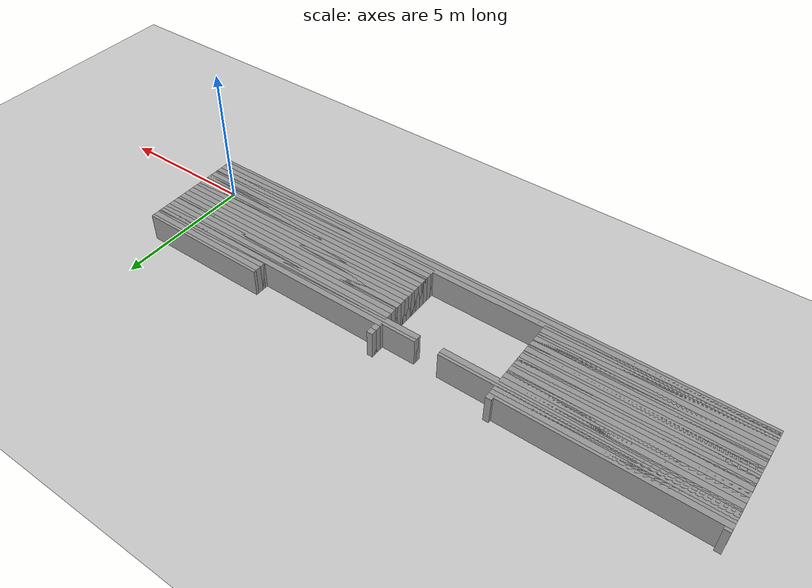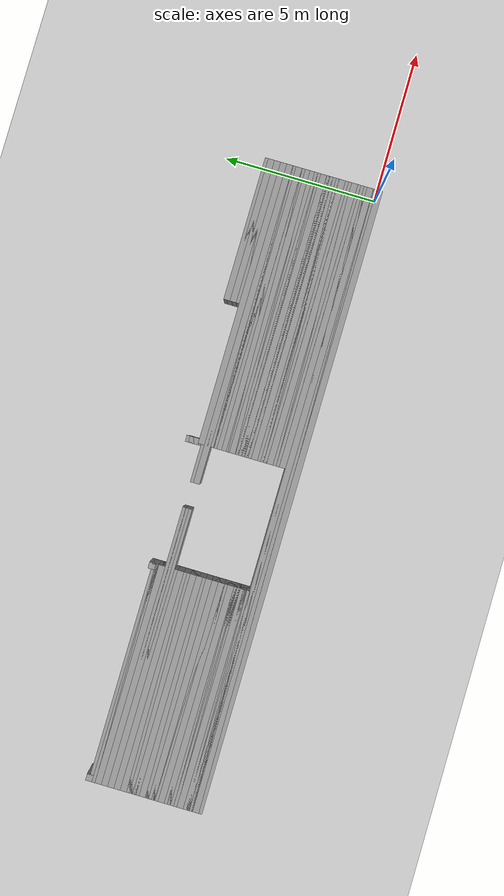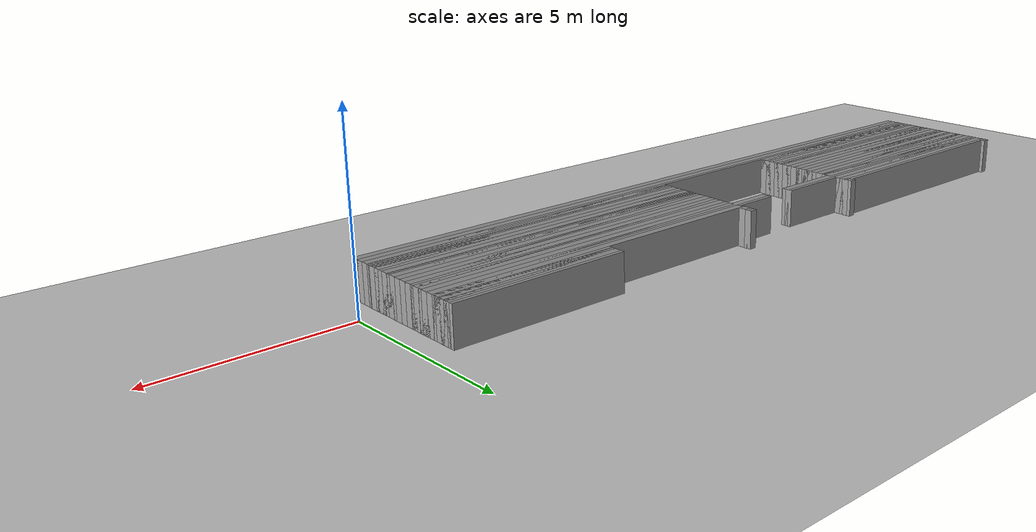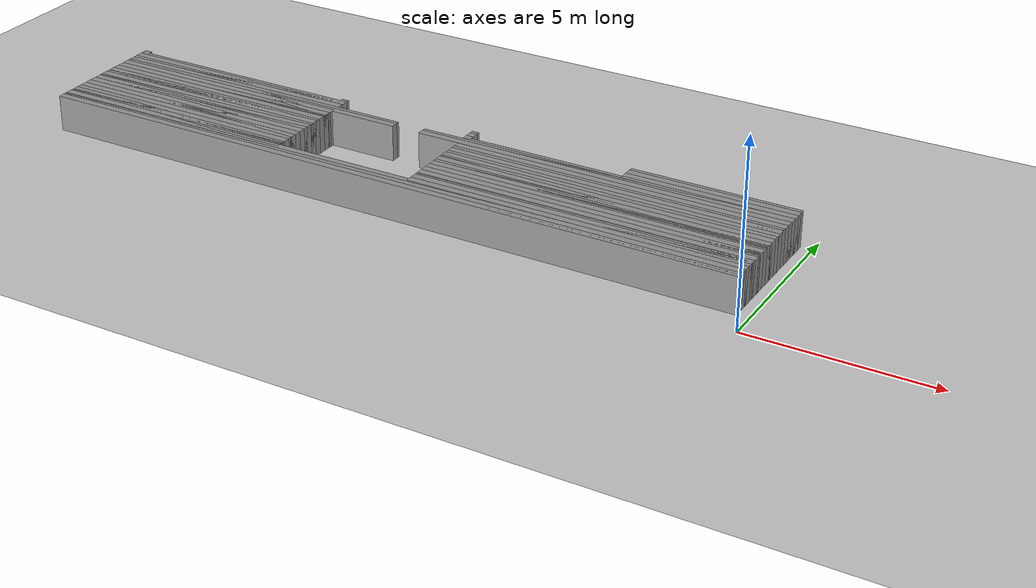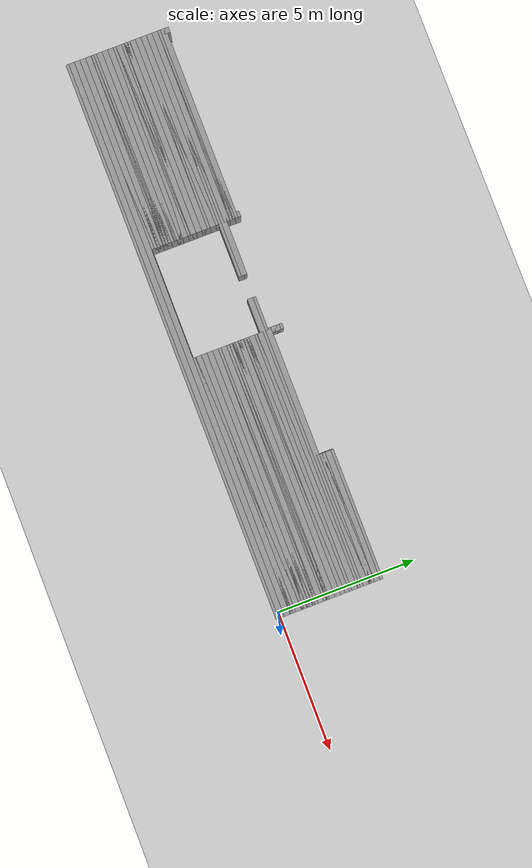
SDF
<sdf version="1.6">
 <world name="GridMap">
  <include><uri>model://sun</uri></include>
  <include><uri>model://ground_plane</uri></include>
  <model name="GridMap">
   <link name="Wall_(99.5,0.0)">
    <collision name="Wall_(99.5,0.0)_Collision">
     <geometry><box><size>19.900000000000002 0.2 1.0</size></box></geometry>
     <pose>-9.950000000000001 0.0 0.5 0 -0 0</pose>
    </collision>
    <visual name="Wall_(99.5,0.0)_Visual">
     <geometry><box><size>19.900000000000002 0.2 1.0</size></box></geometry>
     <pose>-9.950000000000001 0.0 0.5 0 -0 0</pose>
     <material>
      <script><uri>file://media/materials/scripts/gazebo.material</uri><name>Gazebo/Grey</name></script>
      <ambient>1 1 1 1</ambient>
     </material>
     <meta><layer>0</layer></meta>
    </visual>
    <pose>0 0 0.5 0 -0 0</pose>
   </link>
   <link name="Wall_(99.5,1.0)">
    <collision name="Wall_(99.5,1.0)_Collision">
     <geometry><box><size>19.900000000000002 0.2 1.0</size></box></geometry>
     <pose>-9.950000000000001 0.1 0.5 0 -0 0</pose>
    </collision>
    <visual name="Wall_(99.5,1.0)_Visual">
     <geometry><box><size>19.900000000000002 0.2 1.0</size></box></geometry>
     <pose>-9.950000000000001 0.1 0.5 0 -0 0</pose>
     <material>
      <script><uri>file://media/materials/scripts/gazebo.material</uri><name>Gazebo/Grey</name></script>
      <ambient>1 1 1 1</ambient>
     </material>
     <meta><layer>0</layer></meta>
    </visual>
    <pose>0 0 0.5 0 -0 0</pose>
   </link>
   <link name="Wall_(99.5,2.0)">
    <collision name="Wall_(99.5,2.0)_Collision">
     <geometry><box><size>19.900000000000002 0.2 1.0</size></box></geometry>
     <pose>-9.950000000000001 0.2 0.5 0 -0 0</pose>
    </collision>
    <visual name="Wall_(99.5,2.0)_Visual">
     <geometry><box><size>19.900000000000002 0.2 1.0</size></box></geometry>
     <pose>-9.950000000000001 0.2 0.5 0 -0 0</pose>
     <material>
      <script><uri>file://media/materials/scripts/gazebo.material</uri><name>Gazebo/Grey</name></script>
      <ambient>1 1 1 1</ambient>
     </material>
     <meta><layer>0</layer></meta>
    </visual>
    <pose>0 0 0.5 0 -0 0</pose>
   </link>
   <link name="Wall_(99.5,3.0)">
    <collision name="Wall_(99.5,3.0)_Collision">
     <geometry><box><size>19.900000000000002 0.2 1.0</size></box></geometry>
     <pose>-9.950000000000001 0.30000000000000004 0.5 0 -0 0</pose>
    </collision>
    <visual name="Wall_(99.5,3.0)_Visual">
     <geometry><box><size>19.900000000000002 0.2 1.0</size></box></geometry>
     <pose>-9.950000000000001 0.30000000000000004 0.5 0 -0 0</pose>
     <material>
      <script><uri>file://media/materials/scripts/gazebo.material</uri><name>Gazebo/Grey</name></script>
      <ambient>1 1 1 1</ambient>
     </material>
     <meta><layer>0</layer></meta>
    </visual>
    <pose>0 0 0.5 0 -0 0</pose>
   </link>
   <link name="Wall_(45.5,4.0)">
    <collision name="Wall_(45.5,4.0)_Collision">
     <geometry><box><size>9.1 0.2 1.0</size></box></geometry>
     <pose>-4.55 0.4 0.5 0 -0 0</pose>
    </collision>
    <visual name="Wall_(45.5,4.0)_Visual">
     <geometry><box><size>9.1 0.2 1.0</size></box></geometry>
     <pose>-4.55 0.4 0.5 0 -0 0</pose>
     <material>
      <script><uri>file://media/materials/scripts/gazebo.material</uri><name>Gazebo/Grey</name></script>
      <ambient>1 1 1 1</ambient>
     </material>
     <meta><layer>0</layer></meta>
    </visual>
    <pose>0 0 0.5 0 -0 0</pose>
   </link>
   <link name="Wall_(164.5,4.0)">
    <collision name="Wall_(164.5,4.0)_Collision">
     <geometry><box><size>6.9 0.2 1.0</size></box></geometry>
     <pose>-16.45 0.4 0.5 0 -0 0</pose>
    </collision>
    <visual name="Wall_(164.5,4.0)_Visual">
     <geometry><box><size>6.9 0.2 1.0</size></box></geometry>
     <pose>-16.45 0.4 0.5 0 -0 0</pose>
     <material>
      <script><uri>file://media/materials/scripts/gazebo.material</uri><name>Gazebo/Grey</name></script>
      <ambient>1 1 1 1</ambient>
     </material>
     <meta><layer>0</layer></meta>
    </visual>
    <pose>0 0 0.5 0 -0 0</pose>
   </link>
   <link name="Wall_(45.5,5.0)">
    <collision name="Wall_(45.5,5.0)_Collision">
     <geometry><box><size>9.1 0.2 1.0</size></box></geometry>
     <pose>-4.55 0.5 0.5 0 -0 0</pose>
    </collision>
    <visual name="Wall_(45.5,5.0)_Visual">
     <geometry><box><size>9.1 0.2 1.0</size></box></geometry>
     <pose>-4.55 0.5 0.5 0 -0 0</pose>
     <material>
      <script><uri>file://media/materials/scripts/gazebo.material</uri><name>Gazebo/Grey</name></script>
      <ambient>1 1 1 1</ambient>
     </material>
     <meta><layer>0</layer></meta>
    </visual>
    <pose>0 0 0.5 0 -0 0</pose>
   </link>
   <link name="Wall_(164.5,5.0)">
    <collision name="Wall_(164.5,5.0)_Collision">
     <geometry><box><size>6.9 0.2 1.0</size></box></geometry>
     <pose>-16.45 0.5 0.5 0 -0 0</pose>
    </collision>
    <visual name="Wall_(164.5,5.0)_Visual">
     <geometry><box><size>6.9 0.2 1.0</size></box></geometry>
     <pose>-16.45 0.5 0.5 0 -0 0</pose>
     <material>
      <script><uri>file://media/materials/scripts/gazebo.material</uri><name>Gazebo/Grey</name></script>
      <ambient>1 1 1 1</ambient>
     </material>
     <meta><layer>0</layer></meta>
    </visual>
    <pose>0 0 0.5 0 -0 0</pose>
   </link>
   <link name="Wall_(45.5,6.0)">
    <collision name="Wall_(45.5,6.0)_Collision">
     <geometry><box><size>9.1 0.2 1.0</size></box></geometry>
     <pose>-4.55 0.6000000000000001 0.5 0 -0 0</pose>
    </collision>
    <visual name="Wall_(45.5,6.0)_Visual">
     <geometry><box><size>9.1 0.2 1.0</size></box></geometry>
     <pose>-4.55 0.6000000000000001 0.5 0 -0 0</pose>
     <material>
      <script><uri>file://media/materials/scripts/gazebo.material</uri><name>Gazebo/Grey</name></script>
      <ambient>1 1 1 1</ambient>
     </material>
     <meta><layer>0</layer></meta>
    </visual>
    <pose>0 0 0.5 0 -0 0</pose>
   </link>
   <link name="Wall_(164.5,6.0)">
    <collision name="Wall_(164.5,6.0)_Collision">
     <geometry><box><size>6.9 0.2 1.0</size></box></geometry>
     <pose>-16.45 0.6000000000000001 0.5 0 -0 0</pose>
    </collision>
    <visual name="Wall_(164.5,6.0)_Visual">
     <geometry><box><size>6.9 0.2 1.0</size></box></geometry>
     <pose>-16.45 0.6000000000000001 0.5 0 -0 0</pose>
     <material>
      <script><uri>file://media/materials/scripts/gazebo.material</uri><name>Gazebo/Grey</name></script>
      <ambient>1 1 1 1</ambient>
     </material>
     <meta><layer>0</layer></meta>
    </visual>
    <pose>0 0 0.5 0 -0 0</pose>
   </link>
   <link name="Wall_(45.5,7.0)">
    <collision name="Wall_(45.5,7.0)_Collision">
     <geometry><box><size>9.1 0.2 1.0</size></box></geometry>
     <pose>-4.55 0.7000000000000001 0.5 0 -0 0</pose>
    </collision>
    <visual name="Wall_(45.5,7.0)_Visual">
     <geometry><box><size>9.1 0.2 1.0</size></box></geometry>
     <pose>-4.55 0.7000000000000001 0.5 0 -0 0</pose>
     <material>
      <script><uri>file://media/materials/scripts/gazebo.material</uri><name>Gazebo/Grey</name></script>
      <ambient>1 1 1 1</ambient>
     </material>
     <meta><layer>0</layer></meta>
    </visual>
    <pose>0 0 0.5 0 -0 0</pose>
   </link>
   <link name="Wall_(164.5,7.0)">
    <collision name="Wall_(164.5,7.0)_Collision">
     <geometry><box><size>6.9 0.2 1.0</size></box></geometry>
     <pose>-16.45 0.7000000000000001 0.5 0 -0 0</pose>
    </collision>
    <visual name="Wall_(164.5,7.0)_Visual">
     <geometry><box><size>6.9 0.2 1.0</size></box></geometry>
     <pose>-16.45 0.7000000000000001 0.5 0 -0 0</pose>
     <material>
      <script><uri>file://media/materials/scripts/gazebo.material</uri><name>Gazebo/Grey</name></script>
      <ambient>1 1 1 1</ambient>
     </material>
     <meta><layer>0</layer></meta>
    </visual>
    <pose>0 0 0.5 0 -0 0</pose>
   </link>
   <link name="Wall_(45.5,8.0)">
    <collision name="Wall_(45.5,8.0)_Collision">
     <geometry><box><size>9.1 0.2 1.0</size></box></geometry>
     <pose>-4.55 0.8 0.5 0 -0 0</pose>
    </collision>
    <visual name="Wall_(45.5,8.0)_Visual">
     <geometry><box><size>9.1 0.2 1.0</size></box></geometry>
     <pose>-4.55 0.8 0.5 0 -0 0</pose>
     <material>
      <script><uri>file://media/materials/scripts/gazebo.material</uri><name>Gazebo/Grey</name></script>
      <ambient>1 1 1 1</ambient>
     </material>
     <meta><layer>0</layer></meta>
    </visual>
    <pose>0 0 0.5 0 -0 0</pose>
   </link>
   <link name="Wall_(164.5,8.0)">
    <collision name="Wall_(164.5,8.0)_Collision">
     <geometry><box><size>6.9 0.2 1.0</size></box></geometry>
     <pose>-16.45 0.8 0.5 0 -0 0</pose>
    </collision>
    <visual name="Wall_(164.5,8.0)_Visual">
     <geometry><box><size>6.9 0.2 1.0</size></box></geometry>
     <pose>-16.45 0.8 0.5 0 -0 0</pose>
     <material>
      <script><uri>file://media/materials/scripts/gazebo.material</uri><name>Gazebo/Grey</name></script>
      <ambient>1 1 1 1</ambient>
     </material>
     <meta><layer>0</layer></meta>
    </visual>
    <pose>0 0 0.5 0 -0 0</pose>
   </link>
   <link name="Wall_(45.5,9.0)">
    <collision name="Wall_(45.5,9.0)_Collision">
     <geometry><box><size>9.1 0.2 1.0</size></box></geometry>
     <pose>-4.55 0.9 0.5 0 -0 0</pose>
    </collision>
    <visual name="Wall_(45.5,9.0)_Visual">
     <geometry><box><size>9.1 0.2 1.0</size></box></geometry>
     <pose>-4.55 0.9 0.5 0 -0 0</pose>
     <material>
      <script><uri>file://media/materials/scripts/gazebo.material</uri><name>Gazebo/Grey</name></script>
      <ambient>1 1 1 1</ambient>
     </material>
     <meta><layer>0</layer></meta>
    </visual>
    <pose>0 0 0.5 0 -0 0</pose>
   </link>
   <link name="Wall_(164.5,9.0)">
    <collision name="Wall_(164.5,9.0)_Collision">
     <geometry><box><size>6.9 0.2 1.0</size></box></geometry>
     <pose>-16.45 0.9 0.5 0 -0 0</pose>
    </collision>
    <visual name="Wall_(164.5,9.0)_Visual">
     <geometry><box><size>6.9 0.2 1.0</size></box></geometry>
     <pose>-16.45 0.9 0.5 0 -0 0</pose>
     <material>
      <script><uri>file://media/materials/scripts/gazebo.material</uri><name>Gazebo/Grey</name></script>
      <ambient>1 1 1 1</ambient>
     </material>
     <meta><layer>0</layer></meta>
    </visual>
    <pose>0 0 0.5 0 -0 0</pose>
   </link>
   <link name="Wall_(45.5,10.0)">
    <collision name="Wall_(45.5,10.0)_Collision">
     <geometry><box><size>9.1 0.2 1.0</size></box></geometry>
     <pose>-4.55 1.0 0.5 0 -0 0</pose>
    </collision>
    <visual name="Wall_(45.5,10.0)_Visual">
     <geometry><box><size>9.1 0.2 1.0</size></box></geometry>
     <pose>-4.55 1.0 0.5 0 -0 0</pose>
     <material>
      <script><uri>file://media/materials/scripts/gazebo.material</uri><name>Gazebo/Grey</name></script>
      <ambient>1 1 1 1</ambient>
     </material>
     <meta><layer>0</layer></meta>
    </visual>
    <pose>0 0 0.5 0 -0 0</pose>
   </link>
   <link name="Wall_(164.5,10.0)">
    <collision name="Wall_(164.5,10.0)_Collision">
     <geometry><box><size>6.9 0.2 1.0</size></box></geometry>
     <pose>-16.45 1.0 0.5 0 -0 0</pose>
    </collision>
    <visual name="Wall_(164.5,10.0)_Visual">
     <geometry><box><size>6.9 0.2 1.0</size></box></geometry>
     <pose>-16.45 1.0 0.5 0 -0 0</pose>
     <material>
      <script><uri>file://media/materials/scripts/gazebo.material</uri><name>Gazebo/Grey</name></script>
      <ambient>1 1 1 1</ambient>
     </material>
     <meta><layer>0</layer></meta>
    </visual>
    <pose>0 0 0.5 0 -0 0</pose>
   </link>
   <link name="Wall_(45.5,11.0)">
    <collision name="Wall_(45.5,11.0)_Collision">
     <geometry><box><size>9.1 0.2 1.0</size></box></geometry>
     <pose>-4.55 1.1 0.5 0 -0 0</pose>
    </collision>
    <visual name="Wall_(45.5,11.0)_Visual">
     <geometry><box><size>9.1 0.2 1.0</size></box></geometry>
     <pose>-4.55 1.1 0.5 0 -0 0</pose>
     <material>
      <script><uri>file://media/materials/scripts/gazebo.material</uri><name>Gazebo/Grey</name></script>
      <ambient>1 1 1 1</ambient>
     </material>
     <meta><layer>0</layer></meta>
    </visual>
    <pose>0 0 0.5 0 -0 0</pose>
   </link>
   <link name="Wall_(164.5,11.0)">
    <collision name="Wall_(164.5,11.0)_Collision">
     <geometry><box><size>6.9 0.2 1.0</size></box></geometry>
     <pose>-16.45 1.1 0.5 0 -0 0</pose>
    </collision>
    <visual name="Wall_(164.5,11.0)_Visual">
     <geometry><box><size>6.9 0.2 1.0</size></box></geometry>
     <pose>-16.45 1.1 0.5 0 -0 0</pose>
     <material>
      <script><uri>file://media/materials/scripts/gazebo.material</uri><name>Gazebo/Grey</name></script>
      <ambient>1 1 1 1</ambient>
     </material>
     <meta><layer>0</layer></meta>
    </visual>
    <pose>0 0 0.5 0 -0 0</pose>
   </link>
   <link name="Wall_(45.5,12.0)">
    <collision name="Wall_(45.5,12.0)_Collision">
     <geometry><box><size>9.1 0.2 1.0</size></box></geometry>
     <pose>-4.55 1.2000000000000002 0.5 0 -0 0</pose>
    </collision>
    <visual name="Wall_(45.5,12.0)_Visual">
     <geometry><box><size>9.1 0.2 1.0</size></box></geometry>
     <pose>-4.55 1.2000000000000002 0.5 0 -0 0</pose>
     <material>
      <script><uri>file://media/materials/scripts/gazebo.material</uri><name>Gazebo/Grey</name></script>
      <ambient>1 1 1 1</ambient>
     </material>
     <meta><layer>0</layer></meta>
    </visual>
    <pose>0 0 0.5 0 -0 0</pose>
   </link>
   <link name="Wall_(164.5,12.0)">
    <collision name="Wall_(164.5,12.0)_Collision">
     <geometry><box><size>6.9 0.2 1.0</size></box></geometry>
     <pose>-16.45 1.2000000000000002 0.5 0 -0 0</pose>
    </collision>
    <visual name="Wall_(164.5,12.0)_Visual">
     <geometry><box><size>6.9 0.2 1.0</size></box></geometry>
     <pose>-16.45 1.2000000000000002 0.5 0 -0 0</pose>
     <material>
      <script><uri>file://media/materials/scripts/gazebo.material</uri><name>Gazebo/Grey</name></script>
      <ambient>1 1 1 1</ambient>
     </material>
     <meta><layer>0</layer></meta>
    </visual>
    <pose>0 0 0.5 0 -0 0</pose>
   </link>
   <link name="Wall_(45.5,13.0)">
    <collision name="Wall_(45.5,13.0)_Collision">
     <geometry><box><size>9.1 0.2 1.0</size></box></geometry>
     <pose>-4.55 1.3 0.5 0 -0 0</pose>
    </collision>
    <visual name="Wall_(45.5,13.0)_Visual">
     <geometry><box><size>9.1 0.2 1.0</size></box></geometry>
     <pose>-4.55 1.3 0.5 0 -0 0</pose>
     <material>
      <script><uri>file://media/materials/scripts/gazebo.material</uri><name>Gazebo/Grey</name></script>
      <ambient>1 1 1 1</ambient>
     </material>
     <meta><layer>0</layer></meta>
    </visual>
    <pose>0 0 0.5 0 -0 0</pose>
   </link>
   <link name="Wall_(164.5,13.0)">
    <collision name="Wall_(164.5,13.0)_Collision">
     <geometry><box><size>6.9 0.2 1.0</size></box></geometry>
     <pose>-16.45 1.3 0.5 0 -0 0</pose>
    </collision>
    <visual name="Wall_(164.5,13.0)_Visual">
     <geometry><box><size>6.9 0.2 1.0</size></box></geometry>
     <pose>-16.45 1.3 0.5 0 -0 0</pose>
     <material>
      <script><uri>file://media/materials/scripts/gazebo.material</uri><name>Gazebo/Grey</name></script>
      <ambient>1 1 1 1</ambient>
     </material>
     <meta><layer>0</layer></meta>
    </visual>
    <pose>0 0 0.5 0 -0 0</pose>
   </link>
   <link name="Wall_(45.5,14.0)">
    <collision name="Wall_(45.5,14.0)_Collision">
     <geometry><box><size>9.1 0.2 1.0</size></box></geometry>
     <pose>-4.55 1.4000000000000001 0.5 0 -0 0</pose>
    </collision>
    <visual name="Wall_(45.5,14.0)_Visual">
     <geometry><box><size>9.1 0.2 1.0</size></box></geometry>
     <pose>-4.55 1.4000000000000001 0.5 0 -0 0</pose>
     <material>
      <script><uri>file://media/materials/scripts/gazebo.material</uri><name>Gazebo/Grey</name></script>
      <ambient>1 1 1 1</ambient>
     </material>
     <meta><layer>0</layer></meta>
    </visual>
    <pose>0 0 0.5 0 -0 0</pose>
   </link>
   <link name="Wall_(164.5,14.0)">
    <collision name="Wall_(164.5,14.0)_Collision">
     <geometry><box><size>6.9 0.2 1.0</size></box></geometry>
     <pose>-16.45 1.4000000000000001 0.5 0 -0 0</pose>
    </collision>
    <visual name="Wall_(164.5,14.0)_Visual">
     <geometry><box><size>6.9 0.2 1.0</size></box></geometry>
     <pose>-16.45 1.4000000000000001 0.5 0 -0 0</pose>
     <material>
      <script><uri>file://media/materials/scripts/gazebo.material</uri><name>Gazebo/Grey</name></script>
      <ambient>1 1 1 1</ambient>
     </material>
     <meta><layer>0</layer></meta>
    </visual>
    <pose>0 0 0.5 0 -0 0</pose>
   </link>
   <link name="Wall_(45.5,15.0)">
    <collision name="Wall_(45.5,15.0)_Collision">
     <geometry><box><size>9.1 0.2 1.0</size></box></geometry>
     <pose>-4.55 1.5 0.5 0 -0 0</pose>
    </collision>
    <visual name="Wall_(45.5,15.0)_Visual">
     <geometry><box><size>9.1 0.2 1.0</size></box></geometry>
     <pose>-4.55 1.5 0.5 0 -0 0</pose>
     <material>
      <script><uri>file://media/materials/scripts/gazebo.material</uri><name>Gazebo/Grey</name></script>
      <ambient>1 1 1 1</ambient>
     </material>
     <meta><layer>0</layer></meta>
    </visual>
    <pose>0 0 0.5 0 -0 0</pose>
   </link>
   <link name="Wall_(164.5,15.0)">
    <collision name="Wall_(164.5,15.0)_Collision">
     <geometry><box><size>6.9 0.2 1.0</size></box></geometry>
     <pose>-16.45 1.5 0.5 0 -0 0</pose>
    </collision>
    <visual name="Wall_(164.5,15.0)_Visual">
     <geometry><box><size>6.9 0.2 1.0</size></box></geometry>
     <pose>-16.45 1.5 0.5 0 -0 0</pose>
     <material>
      <script><uri>file://media/materials/scripts/gazebo.material</uri><name>Gazebo/Grey</name></script>
      <ambient>1 1 1 1</ambient>
     </material>
     <meta><layer>0</layer></meta>
    </visual>
    <pose>0 0 0.5 0 -0 0</pose>
   </link>
   <link name="Wall_(45.5,16.0)">
    <collision name="Wall_(45.5,16.0)_Collision">
     <geometry><box><size>9.1 0.2 1.0</size></box></geometry>
     <pose>-4.55 1.6 0.5 0 -0 0</pose>
    </collision>
    <visual name="Wall_(45.5,16.0)_Visual">
     <geometry><box><size>9.1 0.2 1.0</size></box></geometry>
     <pose>-4.55 1.6 0.5 0 -0 0</pose>
     <material>
      <script><uri>file://media/materials/scripts/gazebo.material</uri><name>Gazebo/Grey</name></script>
      <ambient>1 1 1 1</ambient>
     </material>
     <meta><layer>0</layer></meta>
    </visual>
    <pose>0 0 0.5 0 -0 0</pose>
   </link>
   <link name="Wall_(164.5,16.0)">
    <collision name="Wall_(164.5,16.0)_Collision">
     <geometry><box><size>6.9 0.2 1.0</size></box></geometry>
     <pose>-16.45 1.6 0.5 0 -0 0</pose>
    </collision>
    <visual name="Wall_(164.5,16.0)_Visual">
     <geometry><box><size>6.9 0.2 1.0</size></box></geometry>
     <pose>-16.45 1.6 0.5 0 -0 0</pose>
     <material>
      <script><uri>file://media/materials/scripts/gazebo.material</uri><name>Gazebo/Grey</name></script>
      <ambient>1 1 1 1</ambient>
     </material>
     <meta><layer>0</layer></meta>
    </visual>
    <pose>0 0 0.5 0 -0 0</pose>
   </link>
   <link name="Wall_(45.5,17.0)">
    <collision name="Wall_(45.5,17.0)_Collision">
     <geometry><box><size>9.1 0.2 1.0</size></box></geometry>
     <pose>-4.55 1.7000000000000002 0.5 0 -0 0</pose>
    </collision>
    <visual name="Wall_(45.5,17.0)_Visual">
     <geometry><box><size>9.1 0.2 1.0</size></box></geometry>
     <pose>-4.55 1.7000000000000002 0.5 0 -0 0</pose>
     <material>
      <script><uri>file://media/materials/scripts/gazebo.material</uri><name>Gazebo/Grey</name></script>
      <ambient>1 1 1 1</ambient>
     </material>
     <meta><layer>0</layer></meta>
    </visual>
    <pose>0 0 0.5 0 -0 0</pose>
   </link>
   <link name="Wall_(164.5,17.0)">
    <collision name="Wall_(164.5,17.0)_Collision">
     <geometry><box><size>6.9 0.2 1.0</size></box></geometry>
     <pose>-16.45 1.7000000000000002 0.5 0 -0 0</pose>
    </collision>
    <visual name="Wall_(164.5,17.0)_Visual">
     <geometry><box><size>6.9 0.2 1.0</size></box></geometry>
     <pose>-16.45 1.7000000000000002 0.5 0 -0 0</pose>
     <material>
      <script><uri>file://media/materials/scripts/gazebo.material</uri><name>Gazebo/Grey</name></script>
      <ambient>1 1 1 1</ambient>
     </material>
     <meta><layer>0</layer></meta>
    </visual>
    <pose>0 0 0.5 0 -0 0</pose>
   </link>
   <link name="Wall_(45.5,18.0)">
    <collision name="Wall_(45.5,18.0)_Collision">
     <geometry><box><size>9.1 0.2 1.0</size></box></geometry>
     <pose>-4.55 1.8 0.5 0 -0 0</pose>
    </collision>
    <visual name="Wall_(45.5,18.0)_Visual">
     <geometry><box><size>9.1 0.2 1.0</size></box></geometry>
     <pose>-4.55 1.8 0.5 0 -0 0</pose>
     <material>
      <script><uri>file://media/materials/scripts/gazebo.material</uri><name>Gazebo/Grey</name></script>
      <ambient>1 1 1 1</ambient>
     </material>
     <meta><layer>0</layer></meta>
    </visual>
    <pose>0 0 0.5 0 -0 0</pose>
   </link>
   <link name="Wall_(164.5,18.0)">
    <collision name="Wall_(164.5,18.0)_Collision">
     <geometry><box><size>6.9 0.2 1.0</size></box></geometry>
     <pose>-16.45 1.8 0.5 0 -0 0</pose>
    </collision>
    <visual name="Wall_(164.5,18.0)_Visual">
     <geometry><box><size>6.9 0.2 1.0</size></box></geometry>
     <pose>-16.45 1.8 0.5 0 -0 0</pose>
     <material>
      <script><uri>file://media/materials/scripts/gazebo.material</uri><name>Gazebo/Grey</name></script>
      <ambient>1 1 1 1</ambient>
     </material>
     <meta><layer>0</layer></meta>
    </visual>
    <pose>0 0 0.5 0 -0 0</pose>
   </link>
   <link name="Wall_(45.5,19.0)">
    <collision name="Wall_(45.5,19.0)_Collision">
     <geometry><box><size>9.1 0.2 1.0</size></box></geometry>
     <pose>-4.55 1.9000000000000001 0.5 0 -0 0</pose>
    </collision>
    <visual name="Wall_(45.5,19.0)_Visual">
     <geometry><box><size>9.1 0.2 1.0</size></box></geometry>
     <pose>-4.55 1.9000000000000001 0.5 0 -0 0</pose>
     <material>
      <script><uri>file://media/materials/scripts/gazebo.material</uri><name>Gazebo/Grey</name></script>
      <ambient>1 1 1 1</ambient>
     </material>
     <meta><layer>0</layer></meta>
    </visual>
    <pose>0 0 0.5 0 -0 0</pose>
   </link>
   <link name="Wall_(164.5,19.0)">
    <collision name="Wall_(164.5,19.0)_Collision">
     <geometry><box><size>6.9 0.2 1.0</size></box></geometry>
     <pose>-16.45 1.9000000000000001 0.5 0 -0 0</pose>
    </collision>
    <visual name="Wall_(164.5,19.0)_Visual">
     <geometry><box><size>6.9 0.2 1.0</size></box></geometry>
     <pose>-16.45 1.9000000000000001 0.5 0 -0 0</pose>
     <material>
      <script><uri>file://media/materials/scripts/gazebo.material</uri><name>Gazebo/Grey</name></script>
      <ambient>1 1 1 1</ambient>
     </material>
     <meta><layer>0</layer></meta>
    </visual>
    <pose>0 0 0.5 0 -0 0</pose>
   </link>
   <link name="Wall_(45.5,20.0)">
    <collision name="Wall_(45.5,20.0)_Collision">
     <geometry><box><size>9.1 0.2 1.0</size></box></geometry>
     <pose>-4.55 2.0 0.5 0 -0 0</pose>
    </collision>
    <visual name="Wall_(45.5,20.0)_Visual">
     <geometry><box><size>9.1 0.2 1.0</size></box></geometry>
     <pose>-4.55 2.0 0.5 0 -0 0</pose>
     <material>
      <script><uri>file://media/materials/scripts/gazebo.material</uri><name>Gazebo/Grey</name></script>
      <ambient>1 1 1 1</ambient>
     </material>
     <meta><layer>0</layer></meta>
    </visual>
    <pose>0 0 0.5 0 -0 0</pose>
   </link>
   <link name="Wall_(164.5,20.0)">
    <collision name="Wall_(164.5,20.0)_Collision">
     <geometry><box><size>6.9 0.2 1.0</size></box></geometry>
     <pose>-16.45 2.0 0.5 0 -0 0</pose>
    </collision>
    <visual name="Wall_(164.5,20.0)_Visual">
     <geometry><box><size>6.9 0.2 1.0</size></box></geometry>
     <pose>-16.45 2.0 0.5 0 -0 0</pose>
     <material>
      <script><uri>file://media/materials/scripts/gazebo.material</uri><name>Gazebo/Grey</name></script>
      <ambient>1 1 1 1</ambient>
     </material>
     <meta><layer>0</layer></meta>
    </visual>
    <pose>0 0 0.5 0 -0 0</pose>
   </link>
   <link name="Wall_(45.5,21.0)">
    <collision name="Wall_(45.5,21.0)_Collision">
     <geometry><box><size>9.1 0.2 1.0</size></box></geometry>
     <pose>-4.55 2.1 0.5 0 -0 0</pose>
    </collision>
    <visual name="Wall_(45.5,21.0)_Visual">
     <geometry><box><size>9.1 0.2 1.0</size></box></geometry>
     <pose>-4.55 2.1 0.5 0 -0 0</pose>
     <material>
      <script><uri>file://media/materials/scripts/gazebo.material</uri><name>Gazebo/Grey</name></script>
      <ambient>1 1 1 1</ambient>
     </material>
     <meta><layer>0</layer></meta>
    </visual>
    <pose>0 0 0.5 0 -0 0</pose>
   </link>
   <link name="Wall_(164.5,21.0)">
    <collision name="Wall_(164.5,21.0)_Collision">
     <geometry><box><size>6.9 0.2 1.0</size></box></geometry>
     <pose>-16.45 2.1 0.5 0 -0 0</pose>
    </collision>
    <visual name="Wall_(164.5,21.0)_Visual">
     <geometry><box><size>6.9 0.2 1.0</size></box></geometry>
     <pose>-16.45 2.1 0.5 0 -0 0</pose>
     <material>
      <script><uri>file://media/materials/scripts/gazebo.material</uri><name>Gazebo/Grey</name></script>
      <ambient>1 1 1 1</ambient>
     </material>
     <meta><layer>0</layer></meta>
    </visual>
    <pose>0 0 0.5 0 -0 0</pose>
   </link>
   <link name="Wall_(45.5,22.0)">
    <collision name="Wall_(45.5,22.0)_Collision">
     <geometry><box><size>9.1 0.2 1.0</size></box></geometry>
     <pose>-4.55 2.2 0.5 0 -0 0</pose>
    </collision>
    <visual name="Wall_(45.5,22.0)_Visual">
     <geometry><box><size>9.1 0.2 1.0</size></box></geometry>
     <pose>-4.55 2.2 0.5 0 -0 0</pose>
     <material>
      <script><uri>file://media/materials/scripts/gazebo.material</uri><name>Gazebo/Grey</name></script>
      <ambient>1 1 1 1</ambient>
     </material>
     <meta><layer>0</layer></meta>
    </visual>
    <pose>0 0 0.5 0 -0 0</pose>
   </link>
   <link name="Wall_(164.5,22.0)">
    <collision name="Wall_(164.5,22.0)_Collision">
     <geometry><box><size>6.9 0.2 1.0</size></box></geometry>
     <pose>-16.45 2.2 0.5 0 -0 0</pose>
    </collision>
    <visual name="Wall_(164.5,22.0)_Visual">
     <geometry><box><size>6.9 0.2 1.0</size></box></geometry>
     <pose>-16.45 2.2 0.5 0 -0 0</pose>
     <material>
      <script><uri>file://media/materials/scripts/gazebo.material</uri><name>Gazebo/Grey</name></script>
      <ambient>1 1 1 1</ambient>
     </material>
     <meta><layer>0</layer></meta>
    </visual>
    <pose>0 0 0.5 0 -0 0</pose>
   </link>
   <link name="Wall_(45.5,23.0)">
    <collision name="Wall_(45.5,23.0)_Collision">
     <geometry><box><size>9.1 0.2 1.0</size></box></geometry>
     <pose>-4.55 2.3000000000000003 0.5 0 -0 0</pose>
    </collision>
    <visual name="Wall_(45.5,23.0)_Visual">
     <geometry><box><size>9.1 0.2 1.0</size></box></geometry>
     <pose>-4.55 2.3000000000000003 0.5 0 -0 0</pose>
     <material>
      <script><uri>file://media/materials/scripts/gazebo.material</uri><name>Gazebo/Grey</name></script>
      <ambient>1 1 1 1</ambient>
     </material>
     <meta><layer>0</layer></meta>
    </visual>
    <pose>0 0 0.5 0 -0 0</pose>
   </link>
   <link name="Wall_(164.5,23.0)">
    <collision name="Wall_(164.5,23.0)_Collision">
     <geometry><box><size>6.9 0.2 1.0</size></box></geometry>
     <pose>-16.45 2.3000000000000003 0.5 0 -0 0</pose>
    </collision>
    <visual name="Wall_(164.5,23.0)_Visual">
     <geometry><box><size>6.9 0.2 1.0</size></box></geometry>
     <pose>-16.45 2.3000000000000003 0.5 0 -0 0</pose>
     <material>
      <script><uri>file://media/materials/scripts/gazebo.material</uri><name>Gazebo/Grey</name></script>
      <ambient>1 1 1 1</ambient>
     </material>
     <meta><layer>0</layer></meta>
    </visual>
    <pose>0 0 0.5 0 -0 0</pose>
   </link>
   <link name="Wall_(45.5,24.0)">
    <collision name="Wall_(45.5,24.0)_Collision">
     <geometry><box><size>9.1 0.2 1.0</size></box></geometry>
     <pose>-4.55 2.4000000000000004 0.5 0 -0 0</pose>
    </collision>
    <visual name="Wall_(45.5,24.0)_Visual">
     <geometry><box><size>9.1 0.2 1.0</size></box></geometry>
     <pose>-4.55 2.4000000000000004 0.5 0 -0 0</pose>
     <material>
      <script><uri>file://media/materials/scripts/gazebo.material</uri><name>Gazebo/Grey</name></script>
      <ambient>1 1 1 1</ambient>
     </material>
     <meta><layer>0</layer></meta>
    </visual>
    <pose>0 0 0.5 0 -0 0</pose>
   </link>
   <link name="Wall_(164.5,24.0)">
    <collision name="Wall_(164.5,24.0)_Collision">
     <geometry><box><size>6.9 0.2 1.0</size></box></geometry>
     <pose>-16.45 2.4000000000000004 0.5 0 -0 0</pose>
    </collision>
    <visual name="Wall_(164.5,24.0)_Visual">
     <geometry><box><size>6.9 0.2 1.0</size></box></geometry>
     <pose>-16.45 2.4000000000000004 0.5 0 -0 0</pose>
     <material>
      <script><uri>file://media/materials/scripts/gazebo.material</uri><name>Gazebo/Grey</name></script>
      <ambient>1 1 1 1</ambient>
     </material>
     <meta><layer>0</layer></meta>
    </visual>
    <pose>0 0 0.5 0 -0 0</pose>
   </link>
   <link name="Wall_(45.5,25.0)">
    <collision name="Wall_(45.5,25.0)_Collision">
     <geometry><box><size>9.1 0.2 1.0</size></box></geometry>
     <pose>-4.55 2.5 0.5 0 -0 0</pose>
    </collision>
    <visual name="Wall_(45.5,25.0)_Visual">
     <geometry><box><size>9.1 0.2 1.0</size></box></geometry>
     <pose>-4.55 2.5 0.5 0 -0 0</pose>
     <material>
      <script><uri>file://media/materials/scripts/gazebo.material</uri><name>Gazebo/Grey</name></script>
      <ambient>1 1 1 1</ambient>
     </material>
     <meta><layer>0</layer></meta>
    </visual>
    <pose>0 0 0.5 0 -0 0</pose>
   </link>
   <link name="Wall_(164.5,25.0)">
    <collision name="Wall_(164.5,25.0)_Collision">
     <geometry><box><size>6.9 0.2 1.0</size></box></geometry>
     <pose>-16.45 2.5 0.5 0 -0 0</pose>
    </collision>
    <visual name="Wall_(164.5,25.0)_Visual">
     <geometry><box><size>6.9 0.2 1.0</size></box></geometry>
     <pose>-16.45 2.5 0.5 0 -0 0</pose>
     <material>
      <script><uri>file://media/materials/scripts/gazebo.material</uri><name>Gazebo/Grey</name></script>
      <ambient>1 1 1 1</ambient>
     </material>
     <meta><layer>0</layer></meta>
    </visual>
    <pose>0 0 0.5 0 -0 0</pose>
   </link>
   <link name="Wall_(45.5,26.0)">
    <collision name="Wall_(45.5,26.0)_Collision">
     <geometry><box><size>9.1 0.2 1.0</size></box></geometry>
     <pose>-4.55 2.6 0.5 0 -0 0</pose>
    </collision>
    <visual name="Wall_(45.5,26.0)_Visual">
     <geometry><box><size>9.1 0.2 1.0</size></box></geometry>
     <pose>-4.55 2.6 0.5 0 -0 0</pose>
     <material>
      <script><uri>file://media/materials/scripts/gazebo.material</uri><name>Gazebo/Grey</name></script>
      <ambient>1 1 1 1</ambient>
     </material>
     <meta><layer>0</layer></meta>
    </visual>
    <pose>0 0 0.5 0 -0 0</pose>
   </link>
   <link name="Wall_(164.5,26.0)">
    <collision name="Wall_(164.5,26.0)_Collision">
     <geometry><box><size>6.9 0.2 1.0</size></box></geometry>
     <pose>-16.45 2.6 0.5 0 -0 0</pose>
    </collision>
    <visual name="Wall_(164.5,26.0)_Visual">
     <geometry><box><size>6.9 0.2 1.0</size></box></geometry>
     <pose>-16.45 2.6 0.5 0 -0 0</pose>
     <material>
      <script><uri>file://media/materials/scripts/gazebo.material</uri><name>Gazebo/Grey</name></script>
      <ambient>1 1 1 1</ambient>
     </material>
     <meta><layer>0</layer></meta>
    </visual>
    <pose>0 0 0.5 0 -0 0</pose>
   </link>
   <link name="Wall_(45.5,27.0)">
    <collision name="Wall_(45.5,27.0)_Collision">
     <geometry><box><size>9.1 0.2 1.0</size></box></geometry>
     <pose>-4.55 2.7 0.5 0 -0 0</pose>
    </collision>
    <visual name="Wall_(45.5,27.0)_Visual">
     <geometry><box><size>9.1 0.2 1.0</size></box></geometry>
     <pose>-4.55 2.7 0.5 0 -0 0</pose>
     <material>
      <script><uri>file://media/materials/scripts/gazebo.material</uri><name>Gazebo/Grey</name></script>
      <ambient>1 1 1 1</ambient>
     </material>
     <meta><layer>0</layer></meta>
    </visual>
    <pose>0 0 0.5 0 -0 0</pose>
   </link>
   <link name="Wall_(164.5,27.0)">
    <collision name="Wall_(164.5,27.0)_Collision">
     <geometry><box><size>6.9 0.2 1.0</size></box></geometry>
     <pose>-16.45 2.7 0.5 0 -0 0</pose>
    </collision>
    <visual name="Wall_(164.5,27.0)_Visual">
     <geometry><box><size>6.9 0.2 1.0</size></box></geometry>
     <pose>-16.45 2.7 0.5 0 -0 0</pose>
     <material>
      <script><uri>file://media/materials/scripts/gazebo.material</uri><name>Gazebo/Grey</name></script>
      <ambient>1 1 1 1</ambient>
     </material>
     <meta><layer>0</layer></meta>
    </visual>
    <pose>0 0 0.5 0 -0 0</pose>
   </link>
   <link name="Wall_(45.5,28.0)">
    <collision name="Wall_(45.5,28.0)_Collision">
     <geometry><box><size>9.1 0.2 1.0</size></box></geometry>
     <pose>-4.55 2.8000000000000003 0.5 0 -0 0</pose>
    </collision>
    <visual name="Wall_(45.5,28.0)_Visual">
     <geometry><box><size>9.1 0.2 1.0</size></box></geometry>
     <pose>-4.55 2.8000000000000003 0.5 0 -0 0</pose>
     <material>
      <script><uri>file://media/materials/scripts/gazebo.material</uri><name>Gazebo/Grey</name></script>
      <ambient>1 1 1 1</ambient>
     </material>
     <meta><layer>0</layer></meta>
    </visual>
    <pose>0 0 0.5 0 -0 0</pose>
   </link>
   <link name="Wall_(164.5,28.0)">
    <collision name="Wall_(164.5,28.0)_Collision">
     <geometry><box><size>6.9 0.2 1.0</size></box></geometry>
     <pose>-16.45 2.8000000000000003 0.5 0 -0 0</pose>
    </collision>
    <visual name="Wall_(164.5,28.0)_Visual">
     <geometry><box><size>6.9 0.2 1.0</size></box></geometry>
     <pose>-16.45 2.8000000000000003 0.5 0 -0 0</pose>
     <material>
      <script><uri>file://media/materials/scripts/gazebo.material</uri><name>Gazebo/Grey</name></script>
      <ambient>1 1 1 1</ambient>
     </material>
     <meta><layer>0</layer></meta>
    </visual>
    <pose>0 0 0.5 0 -0 0</pose>
   </link>
   <link name="Wall_(51.5,29.0)">
    <collision name="Wall_(51.5,29.0)_Collision">
     <geometry><box><size>10.3 0.2 1.0</size></box></geometry>
     <pose>-5.15 2.9000000000000004 0.5 0 -0 0</pose>
    </collision>
    <visual name="Wall_(51.5,29.0)_Visual">
     <geometry><box><size>10.3 0.2 1.0</size></box></geometry>
     <pose>-5.15 2.9000000000000004 0.5 0 -0 0</pose>
     <material>
      <script><uri>file://media/materials/scripts/gazebo.material</uri><name>Gazebo/Grey</name></script>
      <ambient>1 1 1 1</ambient>
     </material>
     <meta><layer>0</layer></meta>
    </visual>
    <pose>0 0 0.5 0 -0 0</pose>
   </link>
   <link name="Wall_(155.0,29.0)">
    <collision name="Wall_(155.0,29.0)_Collision">
     <geometry><box><size>8.8 0.2 1.0</size></box></geometry>
     <pose>-15.5 2.9000000000000004 0.5 0 -0 0</pose>
    </collision>
    <visual name="Wall_(155.0,29.0)_Visual">
     <geometry><box><size>8.8 0.2 1.0</size></box></geometry>
     <pose>-15.5 2.9000000000000004 0.5 0 -0 0</pose>
     <material>
      <script><uri>file://media/materials/scripts/gazebo.material</uri><name>Gazebo/Grey</name></script>
      <ambient>1 1 1 1</ambient>
     </material>
     <meta><layer>0</layer></meta>
    </visual>
    <pose>0 0 0.5 0 -0 0</pose>
   </link>
   <link name="Wall_(51.5,30.0)">
    <collision name="Wall_(51.5,30.0)_Collision">
     <geometry><box><size>10.3 0.2 1.0</size></box></geometry>
     <pose>-5.15 3.0 0.5 0 -0 0</pose>
    </collision>
    <visual name="Wall_(51.5,30.0)_Visual">
     <geometry><box><size>10.3 0.2 1.0</size></box></geometry>
     <pose>-5.15 3.0 0.5 0 -0 0</pose>
     <material>
      <script><uri>file://media/materials/scripts/gazebo.material</uri><name>Gazebo/Grey</name></script>
      <ambient>1 1 1 1</ambient>
     </material>
     <meta><layer>0</layer></meta>
    </visual>
    <pose>0 0 0.5 0 -0 0</pose>
   </link>
   <link name="Wall_(155.0,30.0)">
    <collision name="Wall_(155.0,30.0)_Collision">
     <geometry><box><size>8.8 0.2 1.0</size></box></geometry>
     <pose>-15.5 3.0 0.5 0 -0 0</pose>
    </collision>
    <visual name="Wall_(155.0,30.0)_Visual">
     <geometry><box><size>8.8 0.2 1.0</size></box></geometry>
     <pose>-15.5 3.0 0.5 0 -0 0</pose>
     <material>
      <script><uri>file://media/materials/scripts/gazebo.material</uri><name>Gazebo/Grey</name></script>
      <ambient>1 1 1 1</ambient>
     </material>
     <meta><layer>0</layer></meta>
    </visual>
    <pose>0 0 0.5 0 -0 0</pose>
   </link>
   <link name="Wall_(45.5,31.0)">
    <collision name="Wall_(45.5,31.0)_Collision">
     <geometry><box><size>9.1 0.2 1.0</size></box></geometry>
     <pose>-4.55 3.1 0.5 0 -0 0</pose>
    </collision>
    <visual name="Wall_(45.5,31.0)_Visual">
     <geometry><box><size>9.1 0.2 1.0</size></box></geometry>
     <pose>-4.55 3.1 0.5 0 -0 0</pose>
     <material>
      <script><uri>file://media/materials/scripts/gazebo.material</uri><name>Gazebo/Grey</name></script>
      <ambient>1 1 1 1</ambient>
     </material>
     <meta><layer>0</layer></meta>
    </visual>
    <pose>0 0 0.5 0 -0 0</pose>
   </link>
   <link name="Wall_(164.5,31.0)">
    <collision name="Wall_(164.5,31.0)_Collision">
     <geometry><box><size>6.9 0.2 1.0</size></box></geometry>
     <pose>-16.45 3.1 0.5 0 -0 0</pose>
    </collision>
    <visual name="Wall_(164.5,31.0)_Visual">
     <geometry><box><size>6.9 0.2 1.0</size></box></geometry>
     <pose>-16.45 3.1 0.5 0 -0 0</pose>
     <material>
      <script><uri>file://media/materials/scripts/gazebo.material</uri><name>Gazebo/Grey</name></script>
      <ambient>1 1 1 1</ambient>
     </material>
     <meta><layer>0</layer></meta>
    </visual>
    <pose>0 0 0.5 0 -0 0</pose>
   </link>
   <link name="Wall_(23.0,32.0)">
    <collision name="Wall_(23.0,32.0)_Collision">
     <geometry><box><size>4.6000000000000005 0.2 1.0</size></box></geometry>
     <pose>-2.3000000000000003 3.2 0.5 0 -0 0</pose>
    </collision>
    <visual name="Wall_(23.0,32.0)_Visual">
     <geometry><box><size>4.6000000000000005 0.2 1.0</size></box></geometry>
     <pose>-2.3000000000000003 3.2 0.5 0 -0 0</pose>
     <material>
      <script><uri>file://media/materials/scripts/gazebo.material</uri><name>Gazebo/Grey</name></script>
      <ambient>1 1 1 1</ambient>
     </material>
     <meta><layer>0</layer></meta>
    </visual>
    <pose>0 0 0.5 0 -0 0</pose>
   </link>
   <link name="Wall_(90.5,32.0)">
    <collision name="Wall_(90.5,32.0)_Collision">
     <geometry><box><size>0.2 0.2 1.0</size></box></geometry>
     <pose>-9.05 3.2 0.5 0 -0 0</pose>
    </collision>
    <visual name="Wall_(90.5,32.0)_Visual">
     <geometry><box><size>0.2 0.2 1.0</size></box></geometry>
     <pose>-9.05 3.2 0.5 0 -0 0</pose>
     <material>
      <script><uri>file://media/materials/scripts/gazebo.material</uri><name>Gazebo/Grey</name></script>
      <ambient>1 1 1 1</ambient>
     </material>
     <meta><layer>0</layer></meta>
    </visual>
    <pose>0 0 0.5 0 -0 0</pose>
   </link>
   <link name="Wall_(164.5,32.0)">
    <collision name="Wall_(164.5,32.0)_Collision">
     <geometry><box><size>6.9 0.2 1.0</size></box></geometry>
     <pose>-16.45 3.2 0.5 0 -0 0</pose>
    </collision>
    <visual name="Wall_(164.5,32.0)_Visual">
     <geometry><box><size>6.9 0.2 1.0</size></box></geometry>
     <pose>-16.45 3.2 0.5 0 -0 0</pose>
     <material>
      <script><uri>file://media/materials/scripts/gazebo.material</uri><name>Gazebo/Grey</name></script>
      <ambient>1 1 1 1</ambient>
     </material>
     <meta><layer>0</layer></meta>
    </visual>
    <pose>0 0 0.5 0 -0 0</pose>
   </link>
   <link name="Wall_(23.0,33.0)">
    <collision name="Wall_(23.0,33.0)_Collision">
     <geometry><box><size>4.6000000000000005 0.2 1.0</size></box></geometry>
     <pose>-2.3000000000000003 3.3000000000000003 0.5 0 -0 0</pose>
    </collision>
    <visual name="Wall_(23.0,33.0)_Visual">
     <geometry><box><size>4.6000000000000005 0.2 1.0</size></box></geometry>
     <pose>-2.3000000000000003 3.3000000000000003 0.5 0 -0 0</pose>
     <material>
      <script><uri>file://media/materials/scripts/gazebo.material</uri><name>Gazebo/Grey</name></script>
      <ambient>1 1 1 1</ambient>
     </material>
     <meta><layer>0</layer></meta>
    </visual>
    <pose>0 0 0.5 0 -0 0</pose>
   </link>
   <link name="Wall_(90.5,33.0)">
    <collision name="Wall_(90.5,33.0)_Collision">
     <geometry><box><size>0.2 0.2 1.0</size></box></geometry>
     <pose>-9.05 3.3000000000000003 0.5 0 -0 0</pose>
    </collision>
    <visual name="Wall_(90.5,33.0)_Visual">
     <geometry><box><size>0.2 0.2 1.0</size></box></geometry>
     <pose>-9.05 3.3000000000000003 0.5 0 -0 0</pose>
     <material>
      <script><uri>file://media/materials/scripts/gazebo.material</uri><name>Gazebo/Grey</name></script>
      <ambient>1 1 1 1</ambient>
     </material>
     <meta><layer>0</layer></meta>
    </visual>
    <pose>0 0 0.5 0 -0 0</pose>
   </link>
   <link name="Wall_(164.5,33.0)">
    <collision name="Wall_(164.5,33.0)_Collision">
     <geometry><box><size>6.9 0.2 1.0</size></box></geometry>
     <pose>-16.45 3.3000000000000003 0.5 0 -0 0</pose>
    </collision>
    <visual name="Wall_(164.5,33.0)_Visual">
     <geometry><box><size>6.9 0.2 1.0</size></box></geometry>
     <pose>-16.45 3.3000000000000003 0.5 0 -0 0</pose>
     <material>
      <script><uri>file://media/materials/scripts/gazebo.material</uri><name>Gazebo/Grey</name></script>
      <ambient>1 1 1 1</ambient>
     </material>
     <meta><layer>0</layer></meta>
    </visual>
    <pose>0 0 0.5 0 -0 0</pose>
   </link>
   <link name="Wall_(23.0,34.0)">
    <collision name="Wall_(23.0,34.0)_Collision">
     <geometry><box><size>4.6000000000000005 0.2 1.0</size></box></geometry>
     <pose>-2.3000000000000003 3.4000000000000004 0.5 0 -0 0</pose>
    </collision>
    <visual name="Wall_(23.0,34.0)_Visual">
     <geometry><box><size>4.6000000000000005 0.2 1.0</size></box></geometry>
     <pose>-2.3000000000000003 3.4000000000000004 0.5 0 -0 0</pose>
     <material>
      <script><uri>file://media/materials/scripts/gazebo.material</uri><name>Gazebo/Grey</name></script>
      <ambient>1 1 1 1</ambient>
     </material>
     <meta><layer>0</layer></meta>
    </visual>
    <pose>0 0 0.5 0 -0 0</pose>
   </link>
   <link name="Wall_(90.5,34.0)">
    <collision name="Wall_(90.5,34.0)_Collision">
     <geometry><box><size>0.2 0.2 1.0</size></box></geometry>
     <pose>-9.05 3.4000000000000004 0.5 0 -0 0</pose>
    </collision>
    <visual name="Wall_(90.5,34.0)_Visual">
     <geometry><box><size>0.2 0.2 1.0</size></box></geometry>
     <pose>-9.05 3.4000000000000004 0.5 0 -0 0</pose>
     <material>
      <script><uri>file://media/materials/scripts/gazebo.material</uri><name>Gazebo/Grey</name></script>
      <ambient>1 1 1 1</ambient>
     </material>
     <meta><layer>0</layer></meta>
    </visual>
    <pose>0 0 0.5 0 -0 0</pose>
   </link>
   <link name="Wall_(164.5,34.0)">
    <collision name="Wall_(164.5,34.0)_Collision">
     <geometry><box><size>6.9 0.2 1.0</size></box></geometry>
     <pose>-16.45 3.4000000000000004 0.5 0 -0 0</pose>
    </collision>
    <visual name="Wall_(164.5,34.0)_Visual">
     <geometry><box><size>6.9 0.2 1.0</size></box></geometry>
     <pose>-16.45 3.4000000000000004 0.5 0 -0 0</pose>
     <material>
      <script><uri>file://media/materials/scripts/gazebo.material</uri><name>Gazebo/Grey</name></script>
      <ambient>1 1 1 1</ambient>
     </material>
     <meta><layer>0</layer></meta>
    </visual>
    <pose>0 0 0.5 0 -0 0</pose>
   </link>
   <link name="Wall_(23.0,35.0)">
    <collision name="Wall_(23.0,35.0)_Collision">
     <geometry><box><size>4.6000000000000005 0.2 1.0</size></box></geometry>
     <pose>-2.3000000000000003 3.5 0.5 0 -0 0</pose>
    </collision>
    <visual name="Wall_(23.0,35.0)_Visual">
     <geometry><box><size>4.6000000000000005 0.2 1.0</size></box></geometry>
     <pose>-2.3000000000000003 3.5 0.5 0 -0 0</pose>
     <material>
      <script><uri>file://media/materials/scripts/gazebo.material</uri><name>Gazebo/Grey</name></script>
      <ambient>1 1 1 1</ambient>
     </material>
     <meta><layer>0</layer></meta>
    </visual>
    <pose>0 0 0.5 0 -0 0</pose>
   </link>
   <link name="Wall_(90.5,35.0)">
    <collision name="Wall_(90.5,35.0)_Collision">
     <geometry><box><size>0.2 0.2 1.0</size></box></geometry>
     <pose>-9.05 3.5 0.5 0 -0 0</pose>
    </collision>
    <visual name="Wall_(90.5,35.0)_Visual">
     <geometry><box><size>0.2 0.2 1.0</size></box></geometry>
     <pose>-9.05 3.5 0.5 0 -0 0</pose>
     <material>
      <script><uri>file://media/materials/scripts/gazebo.material</uri><name>Gazebo/Grey</name></script>
      <ambient>1 1 1 1</ambient>
     </material>
     <meta><layer>0</layer></meta>
    </visual>
    <pose>0 0 0.5 0 -0 0</pose>
   </link>
   <link name="Wall_(131.0,35.0)">
    <collision name="Wall_(131.0,35.0)_Collision">
     <geometry><box><size>0.2 0.2 1.0</size></box></geometry>
     <pose>-13.100000000000001 3.5 0.5 0 -0 0</pose>
    </collision>
    <visual name="Wall_(131.0,35.0)_Visual">
     <geometry><box><size>0.2 0.2 1.0</size></box></geometry>
     <pose>-13.100000000000001 3.5 0.5 0 -0 0</pose>
     <material>
      <script><uri>file://media/materials/scripts/gazebo.material</uri><name>Gazebo/Grey</name></script>
      <ambient>1 1 1 1</ambient>
     </material>
     <meta><layer>0</layer></meta>
    </visual>
    <pose>0 0 0.5 0 -0 0</pose>
   </link>
   <link name="Wall_(198.0,35.0)">
    <collision name="Wall_(198.0,35.0)_Collision">
     <geometry><box><size>0.2 0.2 1.0</size></box></geometry>
     <pose>-19.8 3.5 0.5 0 -0 0</pose>
    </collision>
    <visual name="Wall_(198.0,35.0)_Visual">
     <geometry><box><size>0.2 0.2 1.0</size></box></geometry>
     <pose>-19.8 3.5 0.5 0 -0 0</pose>
     <material>
      <script><uri>file://media/materials/scripts/gazebo.material</uri><name>Gazebo/Grey</name></script>
      <ambient>1 1 1 1</ambient>
     </material>
     <meta><layer>0</layer></meta>
    </visual>
    <pose>0 0 0.5 0 -0 0</pose>
   </link>
   <link name="Wall_(23.0,36.0)">
    <collision name="Wall_(23.0,36.0)_Collision">
     <geometry><box><size>4.6000000000000005 0.2 1.0</size></box></geometry>
     <pose>-2.3000000000000003 3.6 0.5 0 -0 0</pose>
    </collision>
    <visual name="Wall_(23.0,36.0)_Visual">
     <geometry><box><size>4.6000000000000005 0.2 1.0</size></box></geometry>
     <pose>-2.3000000000000003 3.6 0.5 0 -0 0</pose>
     <material>
      <script><uri>file://media/materials/scripts/gazebo.material</uri><name>Gazebo/Grey</name></script>
      <ambient>1 1 1 1</ambient>
     </material>
     <meta><layer>0</layer></meta>
    </visual>
    <pose>0 0 0.5 0 -0 0</pose>
   </link>
   <static>1</static>
  </model>
 </world>
</sdf>
